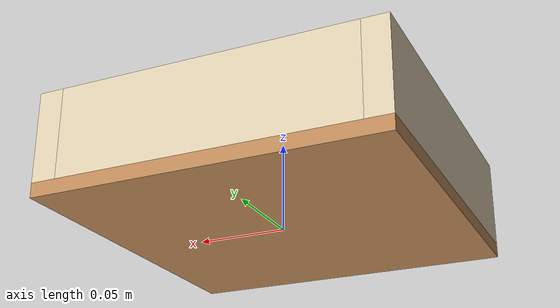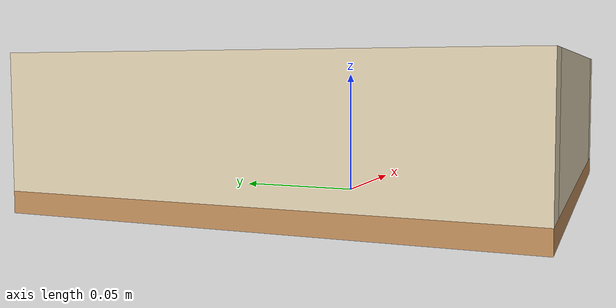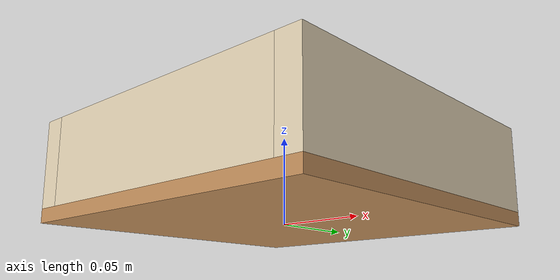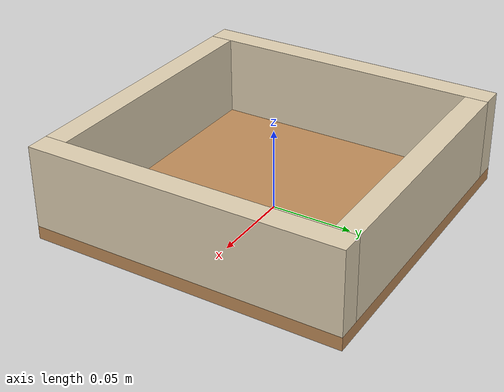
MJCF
<mujoco model="open_box">
  <worldbody>
    <body>
      <body name="object">
        <!-- contain_region site: transparent, used by BDDL goal check -->
        <site type="box" pos="0 0 0.018" quat="1 0 0 0" size="0.085 0.085 0.018" rgba="0.0 0.8 0.1 0.0" name="contain_region" group="0" />
        <!-- Visual geoms (group=1): opaque, no collision -->
        <!-- floor -->
        <geom type="box" pos="0 0 0.004" size="0.095 0.095 0.004" rgba="0.75 0.55 0.35 1" group="1" contype="0" conaffinity="0" />
        <!-- walls: +x, -x, +y, -y (full 4-wall box) -->
        <geom type="box" pos="0.088 0 0.033" size="0.007 0.095 0.025" rgba="0.88 0.82 0.70 1" group="1" contype="0" conaffinity="0" />
        <geom type="box" pos="-0.088 0 0.033" size="0.007 0.095 0.025" rgba="0.88 0.82 0.70 1" group="1" contype="0" conaffinity="0" />
        <geom type="box" pos="0 0.088 0.033" size="0.081 0.007 0.025" rgba="0.88 0.82 0.70 1" group="1" contype="0" conaffinity="0" />
        <geom type="box" pos="0 -0.088 0.033" size="0.081 0.007 0.025" rgba="0.88 0.82 0.70 1" group="1" contype="0" conaffinity="0" />
        <!-- Collision geoms (group=0): physics, semi-transparent -->
        <geom type="box" pos="0 0 0.004" size="0.095 0.095 0.004" rgba="0.75 0.55 0.35 0.15" density="5000" friction="4.0 1.0 0.1" group="0" />
        <geom type="box" pos="0.088 0 0.033" size="0.007 0.095 0.025" rgba="0.88 0.82 0.70 0.15" density="5000" friction="4.0 1.0 0.1" group="0" />
        <geom type="box" pos="-0.088 0 0.033" size="0.007 0.095 0.025" rgba="0.88 0.82 0.70 0.15" density="5000" friction="4.0 1.0 0.1" group="0" />
        <geom type="box" pos="0 0.088 0.033" size="0.081 0.007 0.025" rgba="0.88 0.82 0.70 0.15" density="5000" friction="4.0 1.0 0.1" group="0" />
        <geom type="box" pos="0 -0.088 0.033" size="0.081 0.007 0.025" rgba="0.88 0.82 0.70 0.15" density="5000" friction="4.0 1.0 0.1" group="0" />
      </body>
      <site rgba="0 0 0 0" size="0.005" pos="0 0 0.000" name="bottom_site" group="0" />
      <site rgba="0 0 0 0" size="0.005" pos="0 0 0.058" name="top_site" group="0" />
      <site rgba="0 0 0 0" size="0.005" pos="0.095 0.095 0.033" name="horizontal_radius_site" group="0" />
    </body>
  </worldbody>
</mujoco>
